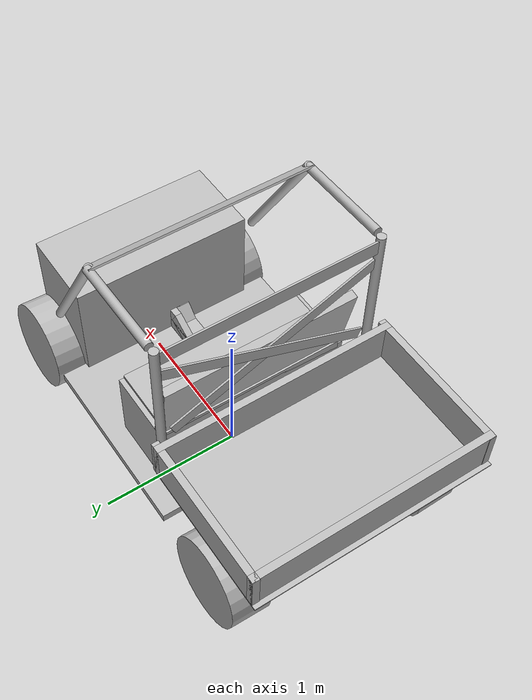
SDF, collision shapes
<?xml version="1.0" ?>
<sdf version='1.6'>
  <model name='rm_rover'>
    <include>
      <uri>model://rover</uri>
    </include>

    <include>
      <uri>model://rplidar</uri>
      <pose>1.5 0 .5 0 0 0</pose>
    </include>
    <joint name="lidar_joint" type="revolute">
      <parent>rover::base_link</parent>
      <child>rplidar::link</child>
      <axis>
        <xyz>0 0 1</xyz>
        <limit>
          <upper>0</upper>
          <lower>0</lower>
        </limit>
      </axis>
    </joint>

    <include>
      <uri>model://zed</uri>
      <pose>1.6 0 .75 0 0 0</pose>
    </include>
    <joint name="depth_camera_joint" type="revolute">
      <parent>rover::base_link</parent>
      <child>zed::link</child>
      <axis>
        <xyz>0 0 1</xyz>
        <limit>
          <upper>0</upper>
          <lower>0</lower>
        </limit>
      </axis>
    </joint>

  </model>
</sdf>

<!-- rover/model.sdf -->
<sdf version="1.5">
  <model name="rover">
    <static>false</static>
    <link name="base_link">
      <inertial>
        <!-- subtracted wheel weights from dry weight of 771 kg -->
        <!-- http://www.polaris.com/en-us/ranger-utv/side-by-sides/ranger-ev/specifications -->
        <mass>720.0</mass>
        <inertia>
          <ixx>140</ixx>
          <ixy>0.0</ixy>
          <iyy>550</iyy>
          <ixz>0.0</ixz>
          <iyz>0.0</iyz>
          <izz>550</izz>
        </inertia>
        <!-- chassis c.o.g. near lateral/longitudinal center, height of 0.4 m -->
        <pose>0.1 0 0.4 0 0 0</pose>
      </inertial>
      <visual name="visual">
        <pose>0 0 0 0 0 -1.570796</pose>
        <geometry>
          <mesh>
            <uri>model://rover/meshes/polaris.dae</uri>
            <submesh>
              <name>Body</name>
              <center>false</center>
            </submesh>
          </mesh>
        </geometry>
        <material>
          <script>
            <uri>model://rover/materials/scripts</uri>
            <uri>model://rover/materials/textures</uri>
            <name>PolarisXP900/Diffuse</name>
          </script>
        </material>
      </visual>
      <collision name="base_link_bottom">
        <pose>0.2 0.0 0.335 0 0 0</pose>
        <geometry>
          <box>
            <size>1.34 1.65746 0.06</size>
          </box>
        </geometry>
      </collision>
      <collision name="cargo_bottom">
        <pose>-1.0 0.0 0.921 0.0 0.0 0.0</pose>
        <geometry>
          <box>
            <size>1.04609 1.6998 0.01</size>
          </box>
        </geometry>
      </collision>
      <collision name="cargo_front">
        <pose>-0.495 0.0 1.06 0.0 0.0 0.0</pose>
        <geometry>
          <box>
            <size>0.05 1.69982 0.27</size>
          </box>
        </geometry>
      </collision>
      <collision name="cargo_back">
        <pose>-1.465 0.0 1.06 0.0 0.0 0.0</pose>
        <geometry>
          <box>
            <size>0.05 1.69982 0.27</size>
          </box>
        </geometry>
      </collision>
      <collision name="cargo_left">
        <pose>-0.97 0.82491 1.06 0.0 0.0 0.0</pose>
        <geometry>
          <box>
            <size>1.04609 0.05 0.27</size>
          </box>
        </geometry>
      </collision>
      <collision name="cargo_right">
        <pose>-0.97 -0.82491 1.06 0.0 0.0 0.0</pose>
        <geometry>
          <box>
            <size>1.04609 0.05 0.27</size>
          </box>
        </geometry>
      </collision>
      <collision name="seat">
        <pose>0.0 0.0 0.62 0 0 0</pose>
        <geometry>
          <box>
            <size>0.52167 1.37206 0.53369</size>
          </box>
        </geometry>
        <surface>
          <contact>
            <ode>
              <min_depth>0.01</min_depth>
            </ode>
          </contact>
        </surface>
      </collision>
      <collision name="mud_seat">
        <pose>0.0 0.0 0.86 0 0 0</pose>
        <geometry>
          <box>
            <size>0.52167 1.30 0.1</size>
          </box>
        </geometry>
        <surface>
          <contact>
            <collide_without_contact>true</collide_without_contact>
          </contact>
        </surface>
      </collision>
      <sensor name="seat_contact" type="contact">
        <always_on>true</always_on>
        <update_rate>1000</update_rate>
        <contact>
          <collision>mud_seat</collision>
        </contact>
      </sensor>
      <collision name="seat_back">
        <pose>-0.26 0.0 1.125 0.0 -0.2 0.0</pose>
        <geometry>
          <box>
            <size>0.06 1.37206 0.6</size>
          </box>
        </geometry>
      </collision>
      <collision name="engine">
        <pose>1.12 0.0 0.7 0.0 0.0 0.0</pose>
        <geometry>
          <box>
            <size>0.58 1.3 0.8</size>
          </box>
        </geometry>
      </collision>
      <collision name="rollcage_top_left">
        <pose>-0.02 0.76 1.936 0 1.60 0</pose>
        <geometry>
          <cylinder>
            <radius>0.03</radius>
            <length>0.68</length>
          </cylinder>
        </geometry>
      </collision>
      <collision name="rollcage_top_right">
        <pose>-0.02 -0.76 1.936 0 1.60 0</pose>
        <geometry>
          <cylinder>
            <radius>0.03</radius>
            <length>0.68</length>
          </cylinder>
        </geometry>
      </collision>
      <collision name="rollcage_top_front">
        <pose>0.315 0.0 1.93 0 -1.0 0</pose>
        <geometry>
          <box>
            <size>0.01299 1.54 0.10226</size>
          </box>
        </geometry>
      </collision>
      <collision name="rollcage_top_back">
        <pose>-0.410 0.0 1.88 0 0 0</pose>
        <geometry>
          <box>
            <size>0.01299 1.54 0.10226</size>
          </box>
        </geometry>
      </collision>
      <collision name="rollcage_front_left">
        <pose>0.602 0.755 1.45 0 -0.54 0</pose>
        <geometry>
          <cylinder>
            <radius>0.03</radius>
            <length>1.15</length>
          </cylinder>
        </geometry>
      </collision>
      <collision name="rollcage_front_right">
        <pose>0.602 -0.755 1.45 0 -0.54 0</pose>
        <geometry>
          <cylinder>
            <radius>0.03</radius>
            <length>1.15</length>
          </cylinder>
        </geometry>
      </collision>
      <collision name="rollcage_back_left">
        <pose>-0.4 0.755 1.45 0 0 0</pose>
        <geometry>
          <cylinder>
            <radius>0.03</radius>
            <length>1.00</length>
          </cylinder>
        </geometry>
      </collision>
      <collision name="rollcage_back_right">
        <pose>-0.4 -0.755 1.45 0 0 0</pose>
        <geometry>
          <cylinder>
            <radius>0.03</radius>
            <length>1.00</length>
          </cylinder>
        </geometry>
      </collision>
      <collision name="rollcage_X_1">
        <pose>-0.411 0.04 1.445 0.397 0 0</pose>
        <geometry>
          <box>
            <size>0.01392 1.557245 0.078</size>
          </box>
        </geometry>
      </collision>
      <collision name="rollcage_X_2">
        <pose>-0.40 -0.04 1.445 -0.397 0 0</pose>
        <geometry>
          <box>
            <size>0.01392 1.557245 0.078</size>
          </box>
        </geometry>
      </collision>
      <collision name="central_hump1_collision">
        <pose>0.55 -0.1 0.4 0 0 0</pose>
        <geometry>
          <box>
            <size>0.6 0.15 0.1</size>
          </box>
        </geometry>
      </collision>
      <collision name="central_hump2_collision">
        <pose>0.7 -0.05 0.45 0 -0.5 0</pose>
        <geometry>
          <box>
            <size>0.20 0.05 0.1</size>
          </box>
        </geometry>
      </collision>
      <collision name="central_hump3_collision">
        <pose>0.798 -0.125 0.478 0 -0.8 0</pose>
        <geometry>
          <box>
            <size>0.129 0.1 0.05</size>
          </box>
        </geometry>
      </collision>
      <collision name="central_hump4_collision">
        <pose>0.8135 -0.05 0.45 0 0 0</pose>
        <geometry>
          <box>
            <size>0.10 0.05 0.1835</size>
          </box>
        </geometry>
      </collision>
      <collision name="central_hump5_collision">
        <pose>0.84 -0.125 0.45 0 0 0</pose>
        <geometry>
          <box>
            <size>0.03 0.1 0.1835</size>
          </box>
        </geometry>
      </collision>
      <collision name="central_hump6_collision">
        <pose>0.82 -0.125 0.475 0 0 0</pose>
        <geometry>
          <box>
            <size>0.03 0.1 0.05</size>
          </box>
        </geometry>
      </collision>
      <visual name="cargo_visual">
        <pose>-1.0 0 1.03230 0 0 -1.5707</pose>
        <geometry>
          <mesh>
            <uri>model://rover/meshes/polaris.dae</uri>
            <submesh>
              <name>Bed</name>
              <center>true</center>
            </submesh>
          </mesh>
        </geometry>
        <material>
          <script>
            <uri>model://rover/materials/scripts</uri>
            <uri>model://rover/materials/textures</uri>
            <name>PolarisXP900/Diffuse</name>
          </script>
        </material>
      </visual>
      <visual name="tailgate_visual">
        <pose>-1.492 0 1.03 0 0 -1.5707</pose>
        <geometry>
          <mesh>
            <uri>model://rover/meshes/polaris.dae</uri>
            <submesh>
              <name>Tail_Gate</name>
              <center>true</center>
            </submesh>
          </mesh>
        </geometry>
        <material>
          <script>
            <uri>model://rover/materials/scripts</uri>
            <uri>model://rover/materials/textures</uri>
            <name>PolarisXP900/Diffuse</name>
          </script>
        </material>
      </visual>
      <visual name="front_left_brake_visual">
        <pose>1.12 -0.57488 0.35516 3.1415 0 1.5707</pose>
        <geometry>
          <mesh>
            <uri>model://rover/meshes/polaris.dae</uri>
            <submesh>
              <name>Brake_Front_Left</name>
              <center>true</center>
            </submesh>
          </mesh>
        </geometry>
        <material>
          <script>
            <uri>model://rover/materials/scripts</uri>
            <uri>model://rover/materials/textures</uri>
            <name>PolarisXP900/Diffuse</name>
          </script>
        </material>
      </visual>
      <visual name="front_right_brake_visual">
        <pose>1.12 0.57488 0.35516 3.1415 0 1.5707</pose>
        <geometry>
          <mesh>
            <uri>model://rover/meshes/polaris.dae</uri>
            <submesh>
              <name>Brake_Front_Right</name>
              <center>true</center>
            </submesh>
          </mesh>
        </geometry>
        <material>
          <script>
            <uri>model://rover/materials/scripts</uri>
            <uri>model://rover/materials/textures</uri>
            <name>PolarisXP900/Diffuse</name>
          </script>
        </material>
      </visual>
      <visual name="central_hump1">
        <pose>0.55 -0.1 0.4 0 0 0</pose>
        <geometry>
          <box>
            <size>0.6 0.15 0.1</size>
          </box>
        </geometry>
        <material>
          <script>
            <uri>file://media/materials/scripts/gazebo.material</uri>
            <name>Gazebo/DarkGrey</name>
          </script>
        </material>
      </visual>
      <visual name="central_hump2">
        <pose>0.7 -0.05 0.45 0 -0.5 0</pose>
        <geometry>
          <box>
            <size>0.20 0.05 0.1</size>
          </box>
        </geometry>
        <material>
          <script>
            <uri>file://media/materials/scripts/gazebo.material</uri>
            <name>Gazebo/DarkGrey</name>
          </script>
        </material>
      </visual>
      <visual name="central_hump3">
        <pose>0.798 -0.125 0.478 0 -0.8 0</pose>
        <geometry>
          <box>
            <size>0.129 0.1 0.05</size>
          </box>
        </geometry>
        <material>
          <script>
            <uri>file://media/materials/scripts/gazebo.material</uri>
            <name>Gazebo/DarkGrey</name>
          </script>
        </material>
      </visual>
      <visual name="central_hump4">
        <pose>0.8135 -0.05 0.45 0 0 0</pose>
        <geometry>
          <box>
            <size>0.10 0.05 0.1835</size>
          </box>
        </geometry>
        <material>
          <script>
            <uri>file://media/materials/scripts/gazebo.material</uri>
            <name>Gazebo/DarkGrey</name>
          </script>
        </material>
      </visual>
      <visual name="central_hump5">
        <pose>0.84 -0.125 0.45 0 0 0</pose>
        <geometry>
          <box>
            <size>0.03 0.1 0.1835</size>
          </box>
        </geometry>
        <material>
          <script>
            <uri>file://media/materials/scripts/gazebo.material</uri>
            <name>Gazebo/DarkGrey</name>
          </script>
        </material>
      </visual>
      <visual name="central_hump6">
        <pose>0.82 -0.125 0.475 0 0 0</pose>
        <geometry>
          <box>
            <size>0.03 0.1 0.05</size>
          </box>
        </geometry>
        <material>
          <script>
            <uri>file://media/materials/scripts/gazebo.material</uri>
            <name>Gazebo/DarkGrey</name>
          </script>
        </material>
      </visual>
    </link>
    <link name='rover/imu_link'>
      <pose>0 0 0 0 0 0</pose>
      <inertial>
        <pose>0 0 0 0 0 0</pose>
        <mass>0.015</mass>
        <inertia>
          <ixx>1e-05</ixx>
          <ixy>0</ixy>
          <ixz>0</ixz>
          <iyy>1e-05</iyy>
          <iyz>0</iyz>
          <izz>1e-05</izz>
        </inertia>
      </inertial>
    </link>
    <joint name='rover/imu_joint' type='revolute'>
      <child>rover/imu_link</child>
      <parent>base_link</parent>
      <axis>
        <xyz>1 0 0</xyz>
        <limit>
          <lower>0</lower>
          <upper>0</upper>
          <effort>0</effort>
          <velocity>0</velocity>
        </limit>
        <dynamics>
          <spring_reference>0</spring_reference>
          <spring_stiffness>0</spring_stiffness>
        </dynamics>
        <use_parent_model_frame>1</use_parent_model_frame>
      </axis>
    </joint>
    <link name="front_left_wheel">
      <pose>1.20223 0.71562 0.34697 -1.52 0.0 0.0</pose>
      <inertial>
        <mass>12</mass>
        <!-- estimated from http://www.rzrforums.net/wheels-tires/1729-tire-wheel-weights-most-sizes.html -->
        <inertia>
          <ixx>0.5</ixx>
          <ixy>0.0</ixy>
          <iyy>0.5</iyy>
          <ixz>0.0</ixz>
          <iyz>0.0</iyz>
          <izz>1.0</izz>
        </inertia>
      </inertial>
      <collision name="collision">
        <geometry>
          <cylinder>
            <radius>0.3175</radius>
            <length>0.2794</length>
          </cylinder>
        </geometry>
        <max_contacts>1</max_contacts>
        <surface>
          <friction>
            <ode>
              <mu>1.0</mu>
              <mu2>1.0</mu2>
              <fdir1>0 0 1</fdir1>
              <slip1>0.0</slip1>
              <slip2>0.0</slip2>
            </ode>
          </friction>
          <contact>
            <ode>
              <min_depth>0.005</min_depth>
              <kp>1e8</kp>
            </ode>
          </contact>
        </surface>
      </collision>
      <visual name="tire_visual">
        <pose>0 0 0 3.14159 1.570796 0</pose>
        <geometry>
          <mesh>
            <uri>model://rover/meshes/polaris.dae</uri>
            <scale>1.003700111 0.886200464 0.886200464</scale>
            <submesh>
              <name>Wheel_Front_Left</name>
              <center>true</center>
            </submesh>
          </mesh>
        </geometry>
        <material>
          <script>
            <uri>model://rover/materials/scripts</uri>
            <uri>model://rover/materials/textures</uri>
            <name>PolarisXP900/Diffuse</name>
          </script>
        </material>
      </visual>
    </link>
    <link name="front_right_wheel">
      <pose>1.20223 -0.71562 0.34697 1.52 0.0 0.0</pose>
      <inertial>
        <mass>12</mass>
        <!-- estimated from http://www.rzrforums.net/wheels-tires/1729-tire-wheel-weights-most-sizes.html -->
        <inertia>
          <ixx>0.5</ixx>
          <ixy>0.0</ixy>
          <iyy>0.5</iyy>
          <ixz>0.0</ixz>
          <iyz>0.0</iyz>
          <izz>1.0</izz>
        </inertia>
      </inertial>
      <collision name="collision">
        <geometry>
          <cylinder>
            <radius>0.3175</radius>
            <length>0.2794</length>
          </cylinder>
        </geometry>
        <max_contacts>1</max_contacts>
        <surface>
          <friction>
            <ode>
              <mu>1.0</mu>
              <mu2>1.0</mu2>
              <fdir1>0 0 1</fdir1>
              <slip1>0.0</slip1>
              <slip2>0.0</slip2>
            </ode>
          </friction>
          <contact>
            <ode>
              <min_depth>0.005</min_depth>
              <kp>1e8</kp>
            </ode>
          </contact>
        </surface>
      </collision>
      <visual name="visual">
        <pose>0 0 0 0 -1.570796 0</pose>
        <geometry>
          <mesh>
            <uri>model://rover/meshes/polaris.dae</uri>
            <scale>1.003700111 0.886200464 0.886200464</scale>
            <submesh>
              <name>Wheel_Front_Right</name>
              <center>true</center>
            </submesh>
          </mesh>
        </geometry>
        <material>
          <script>
            <uri>model://rover/materials/scripts</uri>
            <uri>model://rover/materials/textures</uri>
            <name>PolarisXP900/Diffuse</name>
          </script>
        </material>
      </visual>
    </link>
    <link name="rear_left_wheel">
      <pose>-0.99377 0.71562 0.34697 -1.52 0.0 0.0</pose>
      <inertial>
        <mass>12</mass>
        <!-- estimated from http://www.rzrforums.net/wheels-tires/1729-tire-wheel-weights-most-sizes.html -->
        <inertia>
          <ixx>0.5</ixx>
          <ixy>0.0</ixy>
          <iyy>0.5</iyy>
          <ixz>0.0</ixz>
          <iyz>0.0</iyz>
          <izz>1.0</izz>
        </inertia>
      </inertial>
      <collision name="collision">
        <geometry>
          <cylinder>
            <radius>0.3175</radius>
            <length>0.2794</length>
          </cylinder>
        </geometry>
        <max_contacts>1</max_contacts>
        <surface>
          <friction>
            <ode>
              <mu>1.0</mu>
              <mu2>1.0</mu2>
              <fdir1>0 0 1</fdir1>
              <slip1>0.0</slip1>
              <slip2>0.0</slip2>
            </ode>
          </friction>
          <contact>
            <ode>
              <min_depth>0.005</min_depth>
              <kp>1e8</kp>
            </ode>
          </contact>
        </surface>
      </collision>
      <visual name="visual">
        <pose>0 0 0 0 -1.570796 0</pose>
        <geometry>
          <mesh>
            <uri>model://rover/meshes/polaris.dae</uri>
            <scale>1.003700111 0.886200464 0.886200464</scale>
            <submesh>
              <name>Wheels_Rear_Left</name>
              <center>true</center>
            </submesh>
          </mesh>
        </geometry>
        <material>
          <script>
            <uri>model://rover/materials/scripts</uri>
            <uri>model://rover/materials/textures</uri>
            <name>PolarisXP900/Diffuse</name>
          </script>
        </material>
      </visual>
    </link>
    <link name="rear_right_wheel">
      <pose>-0.99377 -0.71562 0.34697 1.52 0.0 0.0</pose>
      <inertial>
        <mass>12</mass>
        <!-- estimated from http://www.rzrforums.net/wheels-tires/1729-tire-wheel-weights-most-sizes.html -->
        <inertia>
          <ixx>0.5</ixx>
          <ixy>0.0</ixy>
          <iyy>0.5</iyy>
          <ixz>0.0</ixz>
          <iyz>0.0</iyz>
          <izz>1.0</izz>
        </inertia>
      </inertial>
      <collision name="collision">
        <geometry>
          <cylinder>
            <radius>0.3175</radius>
            <length>0.2794</length>
          </cylinder>
        </geometry>
        <max_contacts>1</max_contacts>
        <surface>
          <friction>
            <ode>
              <mu>1.0</mu>
              <mu2>1.0</mu2>
              <fdir1>0 0 1</fdir1>
              <slip1>0.0</slip1>
              <slip2>0.0</slip2>
            </ode>
          </friction>
          <contact>
            <ode>
              <min_depth>0.005</min_depth>
              <kp>1e8</kp>
            </ode>
          </contact>
        </surface>
      </collision>
      <visual name="visual">
        <pose>0 0 0 0 -1.570796 0</pose>
        <geometry>
          <mesh>
            <uri>model://rover/meshes/polaris.dae</uri>
            <scale>1.003700111 0.886200464 0.886200464</scale>
            <submesh>
              <name>Wheels_Rear_Right</name>
              <center>true</center>
            </submesh>
          </mesh>
        </geometry>
        <material>
          <script>
            <uri>model://rover/materials/scripts</uri>
            <uri>model://rover/materials/textures</uri>
            <name>PolarisXP900/Diffuse</name>
          </script>
        </material>
      </visual>
    </link>
    <link name="front_right_wheel_steering_block">
      <pose>1.20223 -0.5 0.35515 1.570796 0.0 0.0</pose>
      <inertial>
        <mass>1</mass>
        <inertia>
          <ixx>0.01</ixx>
          <ixy>0.0</ixy>
          <iyy>0.01</iyy>
          <ixz>0.0</ixz>
          <iyz>0.0</iyz>
          <izz>0.01</izz>
        </inertia>
      </inertial>
      <collision name="collision">
        <geometry>
          <cylinder>
            <radius>0.05</radius>
            <length>0.01</length>
          </cylinder>
        </geometry>
      </collision>
    </link>
    <link name="front_left_wheel_steering_block">
      <pose>1.20223 0.5 0.35515 1.570796 0.0 0.0</pose>
      <inertial>
        <mass>1</mass>
        <inertia>
          <ixx>0.01</ixx>
          <ixy>0.0</ixy>
          <iyy>0.01</iyy>
          <ixz>0.0</ixz>
          <iyz>0.0</iyz>
          <izz>0.01</izz>
        </inertia>
      </inertial>
      <collision name="collision">
        <geometry>
          <cylinder>
            <radius>0.05</radius>
            <length>0.01</length>
          </cylinder>
        </geometry>
      </collision>
    </link>
    <joint type="revolute" name="front_left_steering_joint">
      <child>front_left_wheel_steering_block</child>
      <parent>base_link</parent>
      <axis>
        <xyz>0 0 1</xyz>
        <limit>
          <lower>-0.7727</lower>
          <upper>0.7727</upper>
        </limit>
        <dynamics>
          <damping>50.0</damping>
        </dynamics>
        <use_parent_model_frame>true</use_parent_model_frame>
      </axis>
      <physics>
        <ode>
          <cfm_damping>1</cfm_damping>
          <limit>
            <cfm>0.000000</cfm>
            <erp>0.900000</erp>
          </limit>
        </ode>
      </physics>
    </joint>
    <joint type="revolute" name="front_left_wheel_joint">
      <child>front_left_wheel</child>
      <parent>front_left_wheel_steering_block</parent>
      <axis>
        <xyz>0 1 0.05</xyz>
        <use_parent_model_frame>true</use_parent_model_frame>
      </axis>
    </joint>
    <joint type="revolute" name="front_right_steering_joint">
      <child>front_right_wheel_steering_block</child>
      <parent>base_link</parent>
      <axis>
        <xyz>0 0 1</xyz>
        <limit>
          <lower>-0.7727</lower>
          <upper>0.7727</upper>
        </limit>
        <dynamics>
          <damping>50.0</damping>
        </dynamics>
        <use_parent_model_frame>true</use_parent_model_frame>
      </axis>
      <physics>
        <ode>
          <cfm_damping>1</cfm_damping>
          <limit>
            <cfm>0.000000</cfm>
            <erp>0.900000</erp>
          </limit>
        </ode>
      </physics>
    </joint>
    <joint type="revolute" name="front_right_wheel_joint">
      <child>front_right_wheel</child>
      <parent>front_right_wheel_steering_block</parent>
      <axis>
        <xyz>0 1 -0.05</xyz>
        <use_parent_model_frame>true</use_parent_model_frame>
      </axis>
    </joint>
    <joint type="revolute" name="rear_left_wheel_joint">
      <child>rear_left_wheel</child>
      <parent>base_link</parent>
      <axis>
        <xyz>0 1 0.05</xyz>
        <use_parent_model_frame>true</use_parent_model_frame>
      </axis>
    </joint>
    <joint type="revolute" name="rear_right_wheel_joint">
      <pose>0.0 0.0 -0.1 0 0 0</pose>
      <child>rear_right_wheel</child>
      <parent>base_link</parent>
      <axis>
        <xyz>0 1 -0.05</xyz>
        <use_parent_model_frame>true</use_parent_model_frame>
      </axis>
    </joint>
    <plugin name='gazebo_imu_plugin' filename='libgazebo_imu_plugin.so'>
      <robotNamespace></robotNamespace>
      <linkName>rover/imu_link</linkName>
      <imuTopic>/imu</imuTopic>
      <gyroscopeNoiseDensity>0.0003394</gyroscopeNoiseDensity>
      <gyroscopeRandomWalk>3.8785e-05</gyroscopeRandomWalk>
      <gyroscopeBiasCorrelationTime>1000.0</gyroscopeBiasCorrelationTime>
      <gyroscopeTurnOnBiasSigma>0.0087</gyroscopeTurnOnBiasSigma>
      <accelerometerNoiseDensity>0.004</accelerometerNoiseDensity>
      <accelerometerRandomWalk>0.006</accelerometerRandomWalk>
      <accelerometerBiasCorrelationTime>300.0</accelerometerBiasCorrelationTime>
      <accelerometerTurnOnBiasSigma>0.196</accelerometerTurnOnBiasSigma>
    </plugin>
    <plugin name="gps_plugin" filename="libgazebo_gps_plugin.so">
	<robotNamespace></robotNamespace>
	<gpsNoise>true</gpsNoise>
    </plugin>
    <plugin name='magnetometer_plugin' filename='libgazebo_magnetometer_plugin.so'>
      <robotNamespace/>
      <pubRate>20</pubRate>
      <noiseDensity>0.0004</noiseDensity>
      <randomWalk>6.4e-06</randomWalk>
      <biasCorrelationTime>600</biasCorrelationTime>
      <magTopic>/mag</magTopic>
    </plugin>
    <plugin name='mavlink_interface' filename='libgazebo_mavlink_interface.so'>
      <robotNamespace></robotNamespace>
      <imuSubTopic>/imu</imuSubTopic>
      <gpsSubTopic>/gps</gpsSubTopic>
      <magSubTopic>/mag</magSubTopic>
      <mavlink_addr>INADDR_ANY</mavlink_addr>
      <mavlink_udp_port>14560</mavlink_udp_port>
      <serialEnabled>false</serialEnabled>
      <serialDevice>/dev/ttyACM0</serialDevice>
      <baudRate>921600</baudRate>
      <qgc_addr>INADDR_ANY</qgc_addr>
      <qgc_udp_port>14550</qgc_udp_port>
      <hil_mode>false</hil_mode>
      <hil_state_level>false</hil_state_level>
      <enable_lockstep>true</enable_lockstep>
      <use_tcp>true</use_tcp>
      <motorSpeedCommandPubTopic>/gazebo/command/motor_speed</motorSpeedCommandPubTopic>
      <control_channels>
        <channel name="rear_left_wheel_drive">
          <input_index>5</input_index>
          <input_offset>0</input_offset>
          <input_scaling>40</input_scaling>
          <zero_position_disarmed>0</zero_position_disarmed>
          <zero_position_armed>0</zero_position_armed>
          <joint_control_type>velocity</joint_control_type>
          <joint_name>rear_left_wheel_joint</joint_name>
          <joint_control_pid>
            <p>50</p>
            <i>20</i>
            <d>2</d>
            <iMax>800</iMax>
            <iMin>-800</iMin>
            <cmdMax>1200</cmdMax>
            <cmdMin>-1200</cmdMin>
          </joint_control_pid>
        </channel>
        <channel name="rear_right_wheel_drive">
          <input_index>6</input_index>
          <input_offset>0</input_offset>
          <input_scaling>40</input_scaling>
          <zero_position_disarmed>0</zero_position_disarmed>
          <zero_position_armed>0</zero_position_armed>
          <joint_control_type>velocity</joint_control_type>
          <joint_name>rear_right_wheel_joint</joint_name>
          <joint_control_pid>
            <p>50</p>
            <i>20</i>
            <d>2</d>
            <iMax>800</iMax>
            <iMin>-800</iMin>
            <cmdMax>1200</cmdMax>
            <cmdMin>-1200</cmdMin>
          </joint_control_pid>
        </channel>
        <channel name="left_wheel_steering">
          <input_index>0</input_index>
          <input_offset>0</input_offset>
          <input_scaling>-0.9</input_scaling>
          <zero_position_disarmed>0</zero_position_disarmed>
          <zero_position_armed>0</zero_position_armed>
          <joint_control_type>position</joint_control_type>
          <joint_name>front_left_steering_joint</joint_name>
          <joint_control_pid>
            <p>80</p>
            <i>40</i>
            <d>0.1</d>
            <iMax>40</iMax>
            <iMin>-40</iMin>
            <cmdMax>80</cmdMax>
            <cmdMin>-80</cmdMin>
          </joint_control_pid>
        </channel>
        <channel name="right_wheel_steering">
          <input_index>1</input_index>
          <input_offset>0</input_offset>
          <input_scaling>-0.9</input_scaling>
          <zero_position_disarmed>0</zero_position_disarmed>
          <zero_position_armed>0</zero_position_armed>
          <joint_control_type>position</joint_control_type>
          <joint_name>front_right_steering_joint</joint_name>
          <joint_control_pid>
            <p>80</p>
            <i>40</i>
            <d>0.1</d>
            <iMax>40</iMax>
            <iMin>-40</iMin>
            <cmdMax>80</cmdMax>
            <cmdMin>-80</cmdMin>
          </joint_control_pid>
        </channel>
      </control_channels>
    </plugin>
  </model>
</sdf>

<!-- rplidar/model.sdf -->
<sdf version="1.5">
  <model name="rplidar">
    <link name="link">

      <inertial>
        <pose>0 0 0 0 0 0</pose>
        <mass>0.19</mass>
        <inertia>
          <ixx>4.15e-6</ixx>
          <ixy>0</ixy>
          <ixz>0</ixz>
          <iyy>2.407e-6</iyy>
          <iyz>0</iyz>
          <izz>2.407e-6</izz>
        </inertia>
      </inertial>

      <visual name="visual">
        <geometry>
          <box>
            <size>0.02 0.05 0.05</size>
          </box>
        </geometry>
      </visual>

      <sensor name="laser" type="ray">
        <ray>
          <scan>
            <horizontal>
              <samples>360</samples>
              <resolution>1</resolution>
              <min_angle>-3.14</min_angle>
              <max_angle>3.14</max_angle>
            </horizontal>
          </scan>
          <range>
            <min>0.2</min>
            <max>6</max>
            <resolution>0.05</resolution>
          </range>
          <noise>
            <type>gaussian</type>
            <mean>0.0</mean>
            <stddev>0.01</stddev>
          </noise>
        </ray>
        <plugin name="laser" filename="libRayPlugin.so" />
        <plugin name="gazebo_ros_head_rplidar_controller" filename="libgazebo_ros_laser.so">
          <topicName>laser/scan</topicName>
          <frameName>rplidar_link</frameName>
        </plugin>
        <always_on>1</always_on>
        <update_rate>10</update_rate>
        <visualize>true</visualize>
      </sensor>
    </link>
  </model>
</sdf>

<!-- vim: set et fenc= ff=unix sts=0 sw=2 ts=2 : -->

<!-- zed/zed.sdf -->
<sdf version="1.5">
  <model name="zed">
    <pose>0 0 0.036 0 0 0</pose>
    <link name="link">
      <inertial>
        <mass>0.1</mass>
      </inertial>
      <collision name="collision">
        <geometry>
          <box>
            <size>0.073000 0.276000 0.072000</size>
          </box>
        </geometry>
      </collision>
      <visual name="visual">
        <geometry>
          <mesh>
            <uri>model://kinect/meshes/kinect.dae</uri>
          </mesh>
        </geometry>
      </visual>
      <sensor name="camera" type="depth">
        <update_rate>5</update_rate>
        <camera>
          <horizontal_fov>1.570796</horizontal_fov>
          <image>
            <width>640</width>
            <height>480</height>
            <format>R8G8B8</format>
          </image>
          <clip>
            <near>0.01</near>
            <far>1000</far>
          </clip>
        </camera>
        <plugin name="camera_plugin" filename="libgazebo_ros_openni_kinect.so">
          <baseline>0.2</baseline>
          <alwaysOn>true</alwaysOn>
          <updateRate>0.0</updateRate>
          <cameraName>camera_ir</cameraName>
          <imageTopicName>/zed_node/left/image_rect_color</imageTopicName>
          <cameraInfoTopicName>/zed/depth/camera_info</cameraInfoTopicName>
          <depthImageTopicName>/zed/depth/image_raw</depthImageTopicName>
          <depthImageInfoTopicName>/zed/depth/camera_info</depthImageInfoTopicName>
          <pointCloudTopicName>/zed/depth/depth_registered</pointCloudTopicName>
          <frameName>zed_camera_center</frameName>
          <pointCloudCutoff>0.01</pointCloudCutoff>
          <pointCloudCutoffMax>100</pointCloudCutoffMax>
          <distortionK1>0</distortionK1>
          <distortionK2>0</distortionK2>
          <distortionK3>0</distortionK3>
          <distortionT1>0</distortionT1>
          <distortionT2>0</distortionT2>
          <CxPrime>0</CxPrime>
          <Cx>0</Cx>
          <Cy>0</Cy>
          <hackBaseline>0</hackBaseline>
        </plugin>
      </sensor>
    </link>
  </model>
</sdf>
